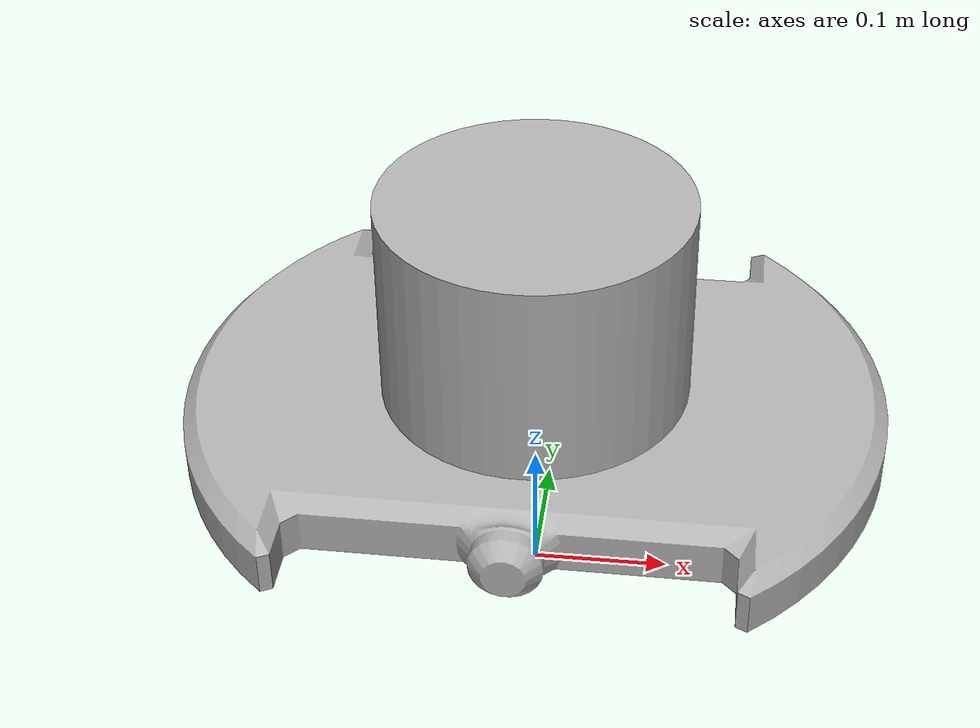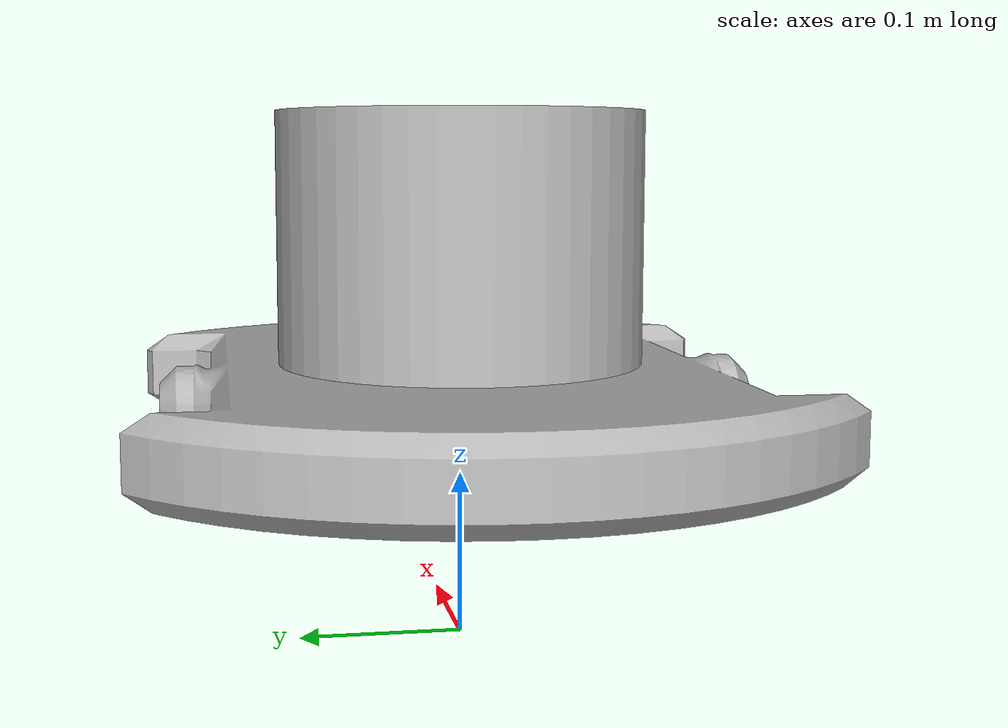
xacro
<?xml version="1.0" ?>
<robot name="AMR_With_Cam" xmlns:xacro="http://www.ros.org/wiki/xacro">

<xacro:include filename="$(find AMR_With_Cam_description)/urdf/materials.xacro" />
<xacro:include filename="$(find AMR_With_Cam_description)/urdf/AMR_With_Cam.trans" />
<xacro:include filename="$(find AMR_With_Cam_description)/urdf/AMR_With_Cam.gazebo" />
<link name="base_link">
  <inertial>
    <origin rpy="0 0 0" xyz="1.3487026851151464e-16 2.2478378085252442e-17 0.1890393928334218"/>
    <mass value="17.867519568345877"/>
    <inertia ixx="0.163769" ixy="0.0" ixz="0.0" iyy="0.267306" iyz="-0.0" izz="0.309475"/>
  </inertial>
  <visual>
    <origin rpy="0 0 0" xyz="0 0 0"/>
    <geometry>
      <mesh filename="package://AMR_With_Cam_description/meshes/base_link.stl" scale="0.001 0.001 0.001"/>
    </geometry>
    <material name="silver"/>
  </visual>
  <collision>
    <origin rpy="0 0 0" xyz="0 0 0"/>
    <geometry>
      <mesh filename="package://AMR_With_Cam_description/meshes/base_link.stl" scale="0.001 0.001 0.001"/>
    </geometry>
  </collision>
</link>

</robot>

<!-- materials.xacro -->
<robot name="AMR_With_Cam" xmlns:xacro="http://www.ros.org/wiki/xacro" >

<material name="silver">
  <color rgba="0.700 0.700 0.700 1.000"/>
</material>

</robot>

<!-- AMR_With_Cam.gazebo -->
<robot name="AMR_With_Cam" xmlns:xacro="http://www.ros.org/wiki/xacro" >

<xacro:property name="body_color" value="Gazebo/Silver" />

<gazebo>
  <plugin filename="libgazebo_ros_control.so" name="control"/>
</gazebo>
<gazebo reference="base_link">
  <material>${body_color}</material>
  <mu1>0.2</mu1>
  <mu2>0.2</mu2>
  <selfCollide>true</selfCollide>
  <gravity>true</gravity>
</gazebo>

</robot>
